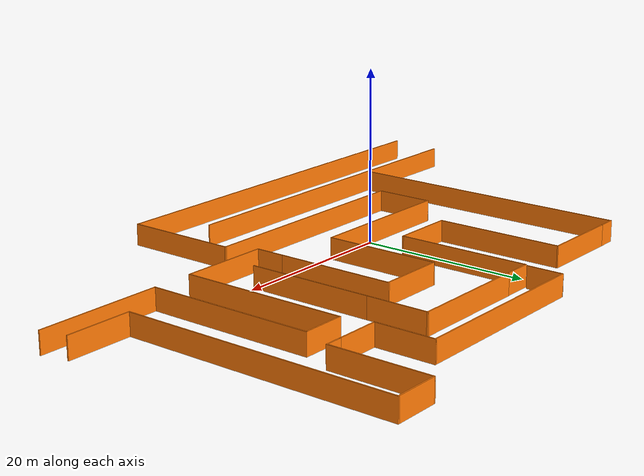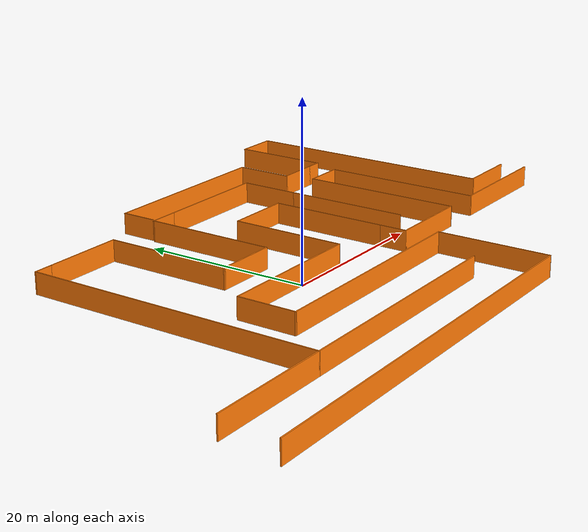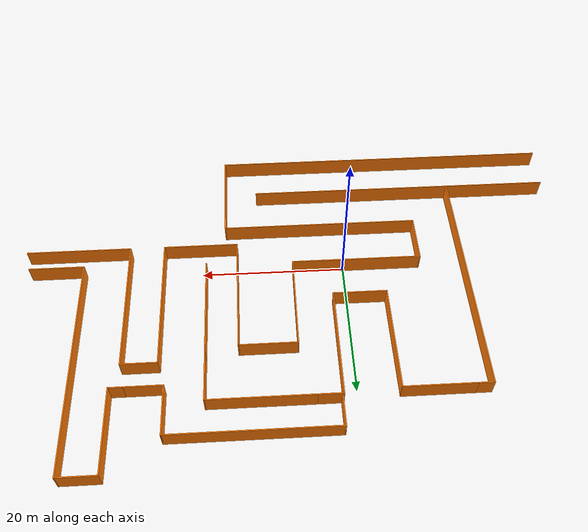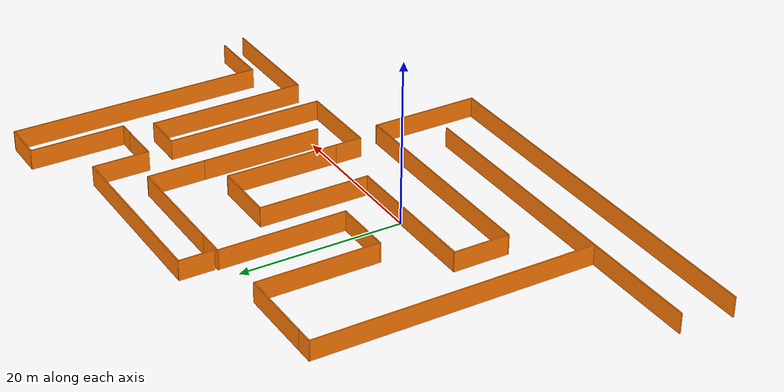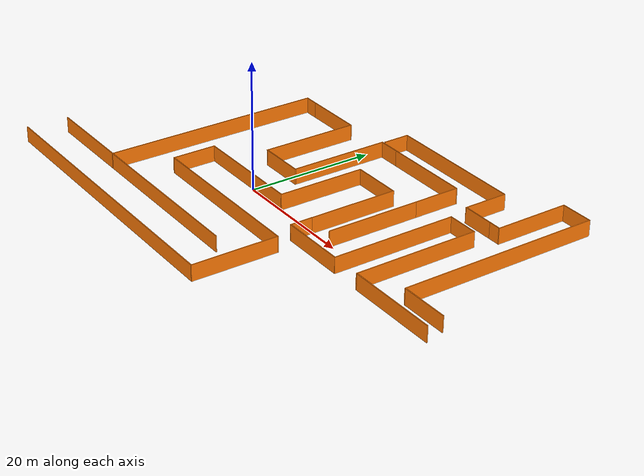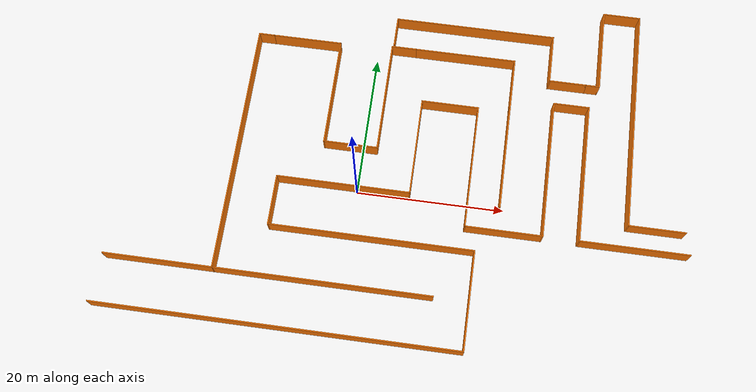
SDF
<?xml version='1.0'?>
<sdf version='1.6'>
  <model name='Maze'>
    <pose frame=''>6.29043 5.3484 0 0 -0 0</pose>
    <link name='Wall_100'>
      <collision name='Wall_100_Collision'>
        <geometry>
          <box>
            <size>7.25 0.15 2.5</size>
          </box>
        </geometry>
        <pose frame=''>0 0 1.25 0 -0 0</pose>
      </collision>
      <visual name='Wall_100_Visual'>
        <pose frame=''>0 0 1.25 0 -0 0</pose>
        <geometry>
          <box>
            <size>7.25 0.15 2.5</size>
          </box>
        </geometry>
        <material>
          <script>
            <uri>file://media/materials/scripts/gazebo.material</uri>
            <name>Gazebo/Grey</name>
          </script>
          <ambient>0.996078 0.47451 0.0196078 1</ambient>
        </material>
        <meta>
          <layer>0</layer>
        </meta>
      </visual>
      <pose frame=''>13.05 12.6653 0 0 -0 1.5708</pose>
    </link>
    <link name='Wall_101'>
      <collision name='Wall_101_Collision'>
        <geometry>
          <box>
            <size>14.25 0.15 2.5</size>
          </box>
        </geometry>
        <pose frame=''>0 0 1.25 0 -0 0</pose>
      </collision>
      <visual name='Wall_101_Visual'>
        <pose frame=''>0 0 1.25 0 -0 0</pose>
        <geometry>
          <box>
            <size>14.25 0.15 2.5</size>
          </box>
        </geometry>
        <material>
          <script>
            <uri>file://media/materials/scripts/gazebo.material</uri>
            <name>Gazebo/Grey</name>
          </script>
          <ambient>0.996078 0.47451 0.0196078 1</ambient>
        </material>
        <meta>
          <layer>0</layer>
        </meta>
      </visual>
      <pose frame=''>6 16.2153 0 0 -0 3.14159</pose>
    </link>
    <link name='Wall_102'>
      <collision name='Wall_102_Collision'>
        <geometry>
          <box>
            <size>3.5 0.15 2.5</size>
          </box>
        </geometry>
        <pose frame=''>0 0 1.25 0 -0 0</pose>
      </collision>
      <visual name='Wall_102_Visual'>
        <pose frame=''>0 0 1.25 0 -0 0</pose>
        <geometry>
          <box>
            <size>3.5 0.15 2.5</size>
          </box>
        </geometry>
        <material>
          <script>
            <uri>file://media/materials/scripts/gazebo.material</uri>
            <name>Gazebo/Grey</name>
          </script>
          <ambient>0.996078 0.47451 0.0196078 1</ambient>
        </material>
        <meta>
          <layer>0</layer>
        </meta>
      </visual>
      <pose frame=''>-2.725 16.2153 0 0 -0 3.14159</pose>
    </link>
    <link name='Wall_103'>
      <collision name='Wall_103_Collision'>
        <geometry>
          <box>
            <size>15.75 0.15 2.5</size>
          </box>
        </geometry>
        <pose frame=''>0 0 1.25 0 -0 0</pose>
      </collision>
      <visual name='Wall_103_Visual'>
        <pose frame=''>0 0 1.25 0 -0 0</pose>
        <geometry>
          <box>
            <size>15.75 0.15 2.5</size>
          </box>
        </geometry>
        <material>
          <script>
            <uri>file://media/materials/scripts/gazebo.material</uri>
            <name>Gazebo/Grey</name>
          </script>
          <ambient>0.996078 0.47451 0.0196078 1</ambient>
        </material>
        <meta>
          <layer>0</layer>
        </meta>
      </visual>
      <pose frame=''>-4.4 8.41528 0 0 -0 -1.5708</pose>
    </link>
    <link name='Wall_104'>
      <collision name='Wall_104_Collision'>
        <geometry>
          <box>
            <size>7.5 0.15 2.5</size>
          </box>
        </geometry>
        <pose frame=''>0 0 1.25 0 -0 0</pose>
      </collision>
      <visual name='Wall_104_Visual'>
        <pose frame=''>0 0 1.25 0 -0 0</pose>
        <geometry>
          <box>
            <size>7.5 0.15 2.5</size>
          </box>
        </geometry>
        <material>
          <script>
            <uri>file://media/materials/scripts/gazebo.material</uri>
            <name>Gazebo/Grey</name>
          </script>
          <ambient>0.996078 0.47451 0.0196078 1</ambient>
        </material>
        <meta>
          <layer>0</layer>
        </meta>
      </visual>
      <pose frame=''>-8.075 0.615279 0 0 -0 3.14159</pose>
    </link>
    <link name='Wall_105'>
      <collision name='Wall_105_Collision'>
        <geometry>
          <box>
            <size>15.25 0.15 2.5</size>
          </box>
        </geometry>
        <pose frame=''>0 0 1.25 0 -0 0</pose>
      </collision>
      <visual name='Wall_105_Visual'>
        <pose frame=''>0 0 1.25 0 -0 0</pose>
        <geometry>
          <box>
            <size>15.25 0.15 2.5</size>
          </box>
        </geometry>
        <material>
          <script>
            <uri>file://media/materials/scripts/gazebo.material</uri>
            <name>Gazebo/Grey</name>
          </script>
          <ambient>0.996078 0.47451 0.0196078 1</ambient>
        </material>
        <meta>
          <layer>0</layer>
        </meta>
      </visual>
      <pose frame=''>-11.75 8.16528 0 0 -0 1.5708</pose>
    </link>
    <link name='Wall_106'>
      <collision name='Wall_106_Collision'>
        <geometry>
          <box>
            <size>9.75 0.15 2.5</size>
          </box>
        </geometry>
        <pose frame=''>0 0 1.25 0 -0 0</pose>
      </collision>
      <visual name='Wall_106_Visual'>
        <pose frame=''>0 0 1.25 0 -0 0</pose>
        <geometry>
          <box>
            <size>9.75 0.15 2.5</size>
          </box>
        </geometry>
        <material>
          <script>
            <uri>file://media/materials/scripts/gazebo.material</uri>
            <name>Gazebo/Grey</name>
          </script>
          <ambient>0.996078 0.47451 0.0196078 1</ambient>
        </material>
        <meta>
          <layer>0</layer>
        </meta>
      </visual>
      <pose frame=''>-16.55 15.7153 0 0 -0 3.14159</pose>
    </link>
    <link name='Wall_107'>
      <collision name='Wall_107_Collision'>
        <geometry>
          <box>
            <size>2.25 0.15 2.5</size>
          </box>
        </geometry>
        <pose frame=''>0 0 1.25 0 -0 0</pose>
      </collision>
      <visual name='Wall_107_Visual'>
        <pose frame=''>0 0 1.25 0 -0 0</pose>
        <geometry>
          <box>
            <size>2.25 0.15 2.5</size>
          </box>
        </geometry>
        <material>
          <script>
            <uri>file://media/materials/scripts/gazebo.material</uri>
            <name>Gazebo/Grey</name>
          </script>
          <ambient>0.996078 0.47451 0.0196078 1</ambient>
        </material>
        <meta>
          <layer>0</layer>
        </meta>
      </visual>
      <pose frame=''>-22.4 15.7153 0 0 -0 3.14159</pose>
    </link>
    <link name='Wall_108'>
      <collision name='Wall_108_Collision'>
        <geometry>
          <box>
            <size>34.75 0.15 2.5</size>
          </box>
        </geometry>
        <pose frame=''>0 0 1.25 0 -0 0</pose>
      </collision>
      <visual name='Wall_108_Visual'>
        <pose frame=''>0 0 1.25 0 -0 0</pose>
        <geometry>
          <box>
            <size>34.75 0.15 2.5</size>
          </box>
        </geometry>
        <material>
          <script>
            <uri>file://media/materials/scripts/gazebo.material</uri>
            <name>Gazebo/Grey</name>
          </script>
          <ambient>0.996078 0.47451 0.0196078 1</ambient>
        </material>
        <meta>
          <layer>0</layer>
        </meta>
      </visual>
      <pose frame=''>-23.45 -1.58472 0 0 -0 -1.5708</pose>
    </link>
    <link name='Wall_109'>
      <collision name='Wall_109_Collision'>
        <geometry>
          <box>
            <size>29.25 0.15 2.5</size>
          </box>
        </geometry>
        <pose frame=''>0 0 1.25 0 -0 0</pose>
      </collision>
      <visual name='Wall_109_Visual'>
        <pose frame=''>0 0 1.25 0 -0 0</pose>
        <geometry>
          <box>
            <size>29.25 0.15 2.5</size>
          </box>
        </geometry>
        <material>
          <script>
            <uri>file://media/materials/scripts/gazebo.material</uri>
            <name>Gazebo/Grey</name>
          </script>
          <ambient>0.996078 0.47451 0.0196078 1</ambient>
        </material>
        <meta>
          <layer>0</layer>
        </meta>
      </visual>
      <pose frame=''>-8.9 -18.8847 0 0 -0 0</pose>
    </link>
    <link name='Wall_113'>
      <collision name='Wall_113_Collision'>
        <geometry>
          <box>
            <size>3.5 0.15 2.5</size>
          </box>
        </geometry>
        <pose frame=''>0 0 1.25 0 -0 0</pose>
      </collision>
      <visual name='Wall_113_Visual'>
        <pose frame=''>0 0 1.25 0 -0 0</pose>
        <geometry>
          <box>
            <size>3.5 0.15 2.5</size>
          </box>
        </geometry>
        <material>
          <script>
            <uri>file://media/materials/scripts/gazebo.material</uri>
            <name>Gazebo/Grey</name>
          </script>
          <ambient>0.996078 0.47451 0.0196078 1</ambient>
        </material>
        <meta>
          <layer>0</layer>
        </meta>
      </visual>
      <pose frame=''>8.7 -7.22502 0 0 -0 -1.5708</pose>
    </link>
    <link name='Wall_114'>
      <collision name='Wall_114_Collision'>
        <geometry>
          <box>
            <size>10.5 0.15 2.5</size>
          </box>
        </geometry>
        <pose frame=''>0 0 1.25 0 -0 0</pose>
      </collision>
      <visual name='Wall_114_Visual'>
        <pose frame=''>0 0 1.25 0 -0 0</pose>
        <geometry>
          <box>
            <size>10.5 0.15 2.5</size>
          </box>
        </geometry>
        <material>
          <script>
            <uri>file://media/materials/scripts/gazebo.material</uri>
            <name>Gazebo/Grey</name>
          </script>
          <ambient>0.996078 0.47451 0.0196078 1</ambient>
        </material>
        <meta>
          <layer>0</layer>
        </meta>
      </visual>
      <pose frame=''>13.875 -8.90002 0 0 -0 0</pose>
    </link>
    <link name='Wall_115'>
      <collision name='Wall_115_Collision'>
        <geometry>
          <box>
            <size>19.5 0.15 2.5</size>
          </box>
        </geometry>
        <pose frame=''>0 0 1.25 0 -0 0</pose>
      </collision>
      <visual name='Wall_115_Visual'>
        <pose frame=''>0 0 1.25 0 -0 0</pose>
        <geometry>
          <box>
            <size>19.5 0.15 2.5</size>
          </box>
        </geometry>
        <material>
          <script>
            <uri>file://media/materials/scripts/gazebo.material</uri>
            <name>Gazebo/Grey</name>
          </script>
          <ambient>0.996078 0.47451 0.0196078 1</ambient>
        </material>
        <meta>
          <layer>0</layer>
        </meta>
      </visual>
      <pose frame=''>19.05 0.774975 0 0 -0 1.5708</pose>
    </link>
    <link name='Wall_116'>
      <collision name='Wall_116_Collision'>
        <geometry>
          <box>
            <size>5 0.15 2.5</size>
          </box>
        </geometry>
        <pose frame=''>0 0 1.25 0 -0 0</pose>
      </collision>
      <visual name='Wall_116_Visual'>
        <pose frame=''>0 0 1.25 0 -0 0</pose>
        <geometry>
          <box>
            <size>5 0.15 2.5</size>
          </box>
        </geometry>
        <material>
          <script>
            <uri>file://media/materials/scripts/gazebo.material</uri>
            <name>Gazebo/Grey</name>
          </script>
          <ambient>0.996078 0.47451 0.0196078 1</ambient>
        </material>
        <meta>
          <layer>0</layer>
        </meta>
      </visual>
      <pose frame=''>21.475 10.45 0 0 -0 0</pose>
    </link>
    <link name='Wall_117'>
      <collision name='Wall_117_Collision'>
        <geometry>
          <box>
            <size>19.5 0.15 2.5</size>
          </box>
        </geometry>
        <pose frame=''>0 0 1.25 0 -0 0</pose>
      </collision>
      <visual name='Wall_117_Visual'>
        <pose frame=''>0 0 1.25 0 -0 0</pose>
        <geometry>
          <box>
            <size>19.5 0.15 2.5</size>
          </box>
        </geometry>
        <material>
          <script>
            <uri>file://media/materials/scripts/gazebo.material</uri>
            <name>Gazebo/Grey</name>
          </script>
          <ambient>0.996078 0.47451 0.0196078 1</ambient>
        </material>
        <meta>
          <layer>0</layer>
        </meta>
      </visual>
      <pose frame=''>23.9 0.774975 0 0 -0 -1.5708</pose>
    </link>
    <link name='Wall_118'>
      <collision name='Wall_118_Collision'>
        <geometry>
          <box>
            <size>14.75 0.15 2.5</size>
          </box>
        </geometry>
        <pose frame=''>0 0 1.25 0 -0 0</pose>
      </collision>
      <visual name='Wall_118_Visual'>
        <pose frame=''>0 0 1.25 0 -0 0</pose>
        <geometry>
          <box>
            <size>14.75 0.15 2.5</size>
          </box>
        </geometry>
        <material>
          <script>
            <uri>file://media/materials/scripts/gazebo.material</uri>
            <name>Gazebo/Grey</name>
          </script>
          <ambient>0.996078 0.47451 0.0196078 1</ambient>
        </material>
        <meta>
          <layer>0</layer>
        </meta>
      </visual>
      <pose frame=''>31.2 -8.90002 0 0 -0 0</pose>
    </link>
    <link name='Wall_120'>
      <collision name='Wall_120_Collision'>
        <geometry>
          <box>
            <size>4.25 0.15 2.5</size>
          </box>
        </geometry>
        <pose frame=''>0 0 1.25 0 -0 0</pose>
      </collision>
      <visual name='Wall_120_Visual'>
        <pose frame=''>0 0 1.25 0 -0 0</pose>
        <geometry>
          <box>
            <size>4.25 0.15 2.5</size>
          </box>
        </geometry>
        <material>
          <script>
            <uri>file://media/materials/scripts/gazebo.material</uri>
            <name>Gazebo/Grey</name>
          </script>
          <ambient>0.996078 0.47451 0.0196078 1</ambient>
        </material>
        <meta>
          <layer>0</layer>
        </meta>
      </visual>
      <pose frame=''>-4.19132 18.6347 0 0 -0 1.5708</pose>
    </link>
    <link name='Wall_121'>
      <collision name='Wall_121_Collision'>
        <geometry>
          <box>
            <size>22.5 0.15 2.5</size>
          </box>
        </geometry>
        <pose frame=''>0 0 1.25 0 -0 0</pose>
      </collision>
      <visual name='Wall_121_Visual'>
        <pose frame=''>0 0 1.25 0 -0 0</pose>
        <geometry>
          <box>
            <size>22.5 0.15 2.5</size>
          </box>
        </geometry>
        <material>
          <script>
            <uri>file://media/materials/scripts/gazebo.material</uri>
            <name>Gazebo/Grey</name>
          </script>
          <ambient>0.996078 0.47451 0.0196078 1</ambient>
        </material>
        <meta>
          <layer>0</layer>
        </meta>
      </visual>
      <pose frame=''>6.98368 20.6847 0 0 -0 0</pose>
    </link>
    <link name='Wall_122'>
      <collision name='Wall_122_Collision'>
        <geometry>
          <box>
            <size>7 0.15 2.5</size>
          </box>
        </geometry>
        <pose frame=''>0 0 1.25 0 -0 0</pose>
      </collision>
      <visual name='Wall_122_Visual'>
        <pose frame=''>0 0 1.25 0 -0 0</pose>
        <geometry>
          <box>
            <size>7 0.15 2.5</size>
          </box>
        </geometry>
        <material>
          <script>
            <uri>file://media/materials/scripts/gazebo.material</uri>
            <name>Gazebo/Grey</name>
          </script>
          <ambient>0.996078 0.47451 0.0196078 1</ambient>
        </material>
        <meta>
          <layer>0</layer>
        </meta>
      </visual>
      <pose frame=''>18.1587 17.2597 0 0 -0 -1.5708</pose>
    </link>
    <link name='Wall_123'>
      <collision name='Wall_123_Collision'>
        <geometry>
          <box>
            <size>5.25 0.15 2.5</size>
          </box>
        </geometry>
        <pose frame=''>0 0 1.25 0 -0 0</pose>
      </collision>
      <visual name='Wall_123_Visual'>
        <pose frame=''>0 0 1.25 0 -0 0</pose>
        <geometry>
          <box>
            <size>5.25 0.15 2.5</size>
          </box>
        </geometry>
        <material>
          <script>
            <uri>file://media/materials/scripts/gazebo.material</uri>
            <name>Gazebo/Grey</name>
          </script>
          <ambient>0.996078 0.47451 0.0196078 1</ambient>
        </material>
        <meta>
          <layer>0</layer>
        </meta>
      </visual>
      <pose frame=''>20.7087 13.8347 0 0 -0 0</pose>
    </link>
    <link name='Wall_124'>
      <collision name='Wall_124_Collision'>
        <geometry>
          <box>
            <size>2 0.15 2.5</size>
          </box>
        </geometry>
        <pose frame=''>0 0 1.25 0 -0 0</pose>
      </collision>
      <visual name='Wall_124_Visual'>
        <pose frame=''>0 0 1.25 0 -0 0</pose>
        <geometry>
          <box>
            <size>2 0.15 2.5</size>
          </box>
        </geometry>
        <material>
          <script>
            <uri>file://media/materials/scripts/gazebo.material</uri>
            <name>Gazebo/Grey</name>
          </script>
          <ambient>0.996078 0.47451 0.0196078 1</ambient>
        </material>
        <meta>
          <layer>0</layer>
        </meta>
      </visual>
      <pose frame=''>24.1837 13.8347 0 0 -0 0</pose>
    </link>
    <link name='Wall_125'>
      <collision name='Wall_125_Collision'>
        <geometry>
          <box>
            <size>11.75 0.15 2.5</size>
          </box>
        </geometry>
        <pose frame=''>0 0 1.25 0 -0 0</pose>
      </collision>
      <visual name='Wall_125_Visual'>
        <pose frame=''>0 0 1.25 0 -0 0</pose>
        <geometry>
          <box>
            <size>11.75 0.15 2.5</size>
          </box>
        </geometry>
        <material>
          <script>
            <uri>file://media/materials/scripts/gazebo.material</uri>
            <name>Gazebo/Grey</name>
          </script>
          <ambient>0.996078 0.47451 0.0196078 1</ambient>
        </material>
        <meta>
          <layer>0</layer>
        </meta>
      </visual>
      <pose frame=''>25.1087 19.6347 0 0 -0 1.5708</pose>
    </link>
    <link name='Wall_126'>
      <collision name='Wall_126_Collision'>
        <geometry>
          <box>
            <size>5.25 0.15 2.5</size>
          </box>
        </geometry>
        <pose frame=''>0 0 1.25 0 -0 0</pose>
      </collision>
      <visual name='Wall_126_Visual'>
        <pose frame=''>0 0 1.25 0 -0 0</pose>
        <geometry>
          <box>
            <size>5.25 0.15 2.5</size>
          </box>
        </geometry>
        <material>
          <script>
            <uri>file://media/materials/scripts/gazebo.material</uri>
            <name>Gazebo/Grey</name>
          </script>
          <ambient>0.996078 0.47451 0.0196078 1</ambient>
        </material>
        <meta>
          <layer>0</layer>
        </meta>
      </visual>
      <pose frame=''>27.6587 25.4347 0 0 -0 0</pose>
    </link>
    <link name='Wall_127'>
      <collision name='Wall_127_Collision'>
        <geometry>
          <box>
            <size>31.5 0.15 2.5</size>
          </box>
        </geometry>
        <pose frame=''>0 0 1.25 0 -0 0</pose>
      </collision>
      <visual name='Wall_127_Visual'>
        <pose frame=''>0 0 1.25 0 -0 0</pose>
        <geometry>
          <box>
            <size>31.5 0.15 2.5</size>
          </box>
        </geometry>
        <material>
          <script>
            <uri>file://media/materials/scripts/gazebo.material</uri>
            <name>Gazebo/Grey</name>
          </script>
          <ambient>0.996078 0.47451 0.0196078 1</ambient>
        </material>
        <meta>
          <layer>0</layer>
        </meta>
      </visual>
      <pose frame=''>30.2087 9.75972 0 0 -0 -1.5708</pose>
    </link>
    <link name='Wall_128'>
      <collision name='Wall_128_Collision'>
        <geometry>
          <box>
            <size>7.75 0.15 2.5</size>
          </box>
        </geometry>
        <pose frame=''>0 0 1.25 0 -0 0</pose>
      </collision>
      <visual name='Wall_128_Visual'>
        <pose frame=''>0 0 1.25 0 -0 0</pose>
        <geometry>
          <box>
            <size>7.75 0.15 2.5</size>
          </box>
        </geometry>
        <material>
          <script>
            <uri>file://media/materials/scripts/gazebo.material</uri>
            <name>Gazebo/Grey</name>
          </script>
          <ambient>0.996078 0.47451 0.0196078 1</ambient>
        </material>
        <meta>
          <layer>0</layer>
        </meta>
      </visual>
      <pose frame=''>34.0087 -5.91528 0 0 -0 0</pose>
    </link>
    <link name='Wall_133'>
      <collision name='Wall_133_Collision'>
        <geometry>
          <box>
            <size>14.75 0.15 2.5</size>
          </box>
        </geometry>
        <pose frame=''>0 0 1.25 0 -0 0</pose>
      </collision>
      <visual name='Wall_133_Visual'>
        <pose frame=''>0 0 1.25 0 -0 0</pose>
        <geometry>
          <box>
            <size>14.75 0.15 2.5</size>
          </box>
        </geometry>
        <material>
          <script>
            <uri>file://media/materials/scripts/gazebo.material</uri>
            <name>Gazebo/Grey</name>
          </script>
          <ambient>0.996078 0.47451 0.0196078 1</ambient>
        </material>
        <meta>
          <layer>0</layer>
        </meta>
      </visual>
      <pose frame=''>-30.75 -18.8847 0 0 -0 3.14159</pose>
    </link>
    <link name='Wall_90'>
      <collision name='Wall_90_Collision'>
        <geometry>
          <box>
            <size>49 0.15 2.5</size>
          </box>
        </geometry>
        <pose frame=''>0 0 1.25 0 -0 0</pose>
      </collision>
      <visual name='Wall_90_Visual'>
        <pose frame=''>0 0 1.25 0 -0 0</pose>
        <geometry>
          <box>
            <size>49 0.15 2.5</size>
          </box>
        </geometry>
        <material>
          <script>
            <uri>file://media/materials/scripts/gazebo.material</uri>
            <name>Gazebo/Grey</name>
          </script>
          <ambient>0.996078 0.47451 0.0196078 1</ambient>
        </material>
        <meta>
          <layer>0</layer>
        </meta>
      </visual>
      <pose frame=''>-14.075 -25.4347 0 0 -0 0</pose>
    </link>
    <link name='Wall_91'>
      <collision name='Wall_91_Collision'>
        <geometry>
          <box>
            <size>13.5 0.15 2.5</size>
          </box>
        </geometry>
        <pose frame=''>0 0 1.25 0 -0 0</pose>
      </collision>
      <visual name='Wall_91_Visual'>
        <pose frame=''>0 0 1.25 0 -0 0</pose>
        <geometry>
          <box>
            <size>13.5 0.15 2.5</size>
          </box>
        </geometry>
        <material>
          <script>
            <uri>file://media/materials/scripts/gazebo.material</uri>
            <name>Gazebo/Grey</name>
          </script>
          <ambient>0.996078 0.47451 0.0196078 1</ambient>
        </material>
        <meta>
          <layer>0</layer>
        </meta>
      </visual>
      <pose frame=''>10.35 -18.7597 0 0 -0 1.5708</pose>
    </link>
    <link name='Wall_92'>
      <collision name='Wall_92_Collision'>
        <geometry>
          <box>
            <size>27.75 0.15 2.5</size>
          </box>
        </geometry>
        <pose frame=''>0 0 1.25 0 -0 0</pose>
      </collision>
      <visual name='Wall_92_Visual'>
        <pose frame=''>0 0 1.25 0 -0 0</pose>
        <geometry>
          <box>
            <size>27.75 0.15 2.5</size>
          </box>
        </geometry>
        <material>
          <script>
            <uri>file://media/materials/scripts/gazebo.material</uri>
            <name>Gazebo/Grey</name>
          </script>
          <ambient>0.996078 0.47451 0.0196078 1</ambient>
        </material>
        <meta>
          <layer>0</layer>
        </meta>
      </visual>
      <pose frame=''>-3.45 -12.0847 0 0 -0 3.14159</pose>
    </link>
    <link name='Wall_93'>
      <collision name='Wall_93_Collision'>
        <geometry>
          <box>
            <size>7 0.15 2.5</size>
          </box>
        </geometry>
        <pose frame=''>0 0 1.25 0 -0 0</pose>
      </collision>
      <visual name='Wall_93_Visual'>
        <pose frame=''>0 0 1.25 0 -0 0</pose>
        <geometry>
          <box>
            <size>7 0.15 2.5</size>
          </box>
        </geometry>
        <material>
          <script>
            <uri>file://media/materials/scripts/gazebo.material</uri>
            <name>Gazebo/Grey</name>
          </script>
          <ambient>0.996078 0.47451 0.0196078 1</ambient>
        </material>
        <meta>
          <layer>0</layer>
        </meta>
      </visual>
      <pose frame=''>-17.25 -8.65972 0 0 -0 1.5708</pose>
    </link>
    <link name='Wall_94'>
      <collision name='Wall_94_Collision'>
        <geometry>
          <box>
            <size>18.25 0.15 2.5</size>
          </box>
        </geometry>
        <pose frame=''>0 0 1.25 0 -0 0</pose>
      </collision>
      <visual name='Wall_94_Visual'>
        <pose frame=''>0 0 1.25 0 -0 0</pose>
        <geometry>
          <box>
            <size>18.25 0.15 2.5</size>
          </box>
        </geometry>
        <material>
          <script>
            <uri>file://media/materials/scripts/gazebo.material</uri>
            <name>Gazebo/Grey</name>
          </script>
          <ambient>0.996078 0.47451 0.0196078 1</ambient>
        </material>
        <meta>
          <layer>0</layer>
        </meta>
      </visual>
      <pose frame=''>-8.2 -5.23472 0 0 -0 0</pose>
    </link>
    <link name='Wall_95'>
      <collision name='Wall_95_Collision'>
        <geometry>
          <box>
            <size>13.75 0.15 2.5</size>
          </box>
        </geometry>
        <pose frame=''>0 0 1.25 0 -0 0</pose>
      </collision>
      <visual name='Wall_95_Visual'>
        <pose frame=''>0 0 1.25 0 -0 0</pose>
        <geometry>
          <box>
            <size>13.75 0.15 2.5</size>
          </box>
        </geometry>
        <material>
          <script>
            <uri>file://media/materials/scripts/gazebo.material</uri>
            <name>Gazebo/Grey</name>
          </script>
          <ambient>0.996078 0.47451 0.0196078 1</ambient>
        </material>
        <meta>
          <layer>0</layer>
        </meta>
      </visual>
      <pose frame=''>0.85 1.56528 0 0 -0 1.5708</pose>
    </link>
    <link name='Wall_96'>
      <collision name='Wall_96_Collision'>
        <geometry>
          <box>
            <size>8 0.15 2.5</size>
          </box>
        </geometry>
        <pose frame=''>0 0 1.25 0 -0 0</pose>
      </collision>
      <visual name='Wall_96_Visual'>
        <pose frame=''>0 0 1.25 0 -0 0</pose>
        <geometry>
          <box>
            <size>8 0.15 2.5</size>
          </box>
        </geometry>
        <material>
          <script>
            <uri>file://media/materials/scripts/gazebo.material</uri>
            <name>Gazebo/Grey</name>
          </script>
          <ambient>0.996078 0.47451 0.0196078 1</ambient>
        </material>
        <meta>
          <layer>0</layer>
        </meta>
      </visual>
      <pose frame=''>4.775 8.36528 0 0 -0 0</pose>
    </link>
    <link name='Wall_97'>
      <collision name='Wall_97_Collision'>
        <geometry>
          <box>
            <size>14.0654 0.15 2.5</size>
          </box>
        </geometry>
        <pose frame=''>0 0 1.25 0 -0 0</pose>
      </collision>
      <visual name='Wall_97_Visual'>
        <pose frame=''>0 0 1.25 0 -0 0</pose>
        <geometry>
          <box>
            <size>14.0654 0.15 2.5</size>
          </box>
        </geometry>
        <material>
          <script>
            <uri>file://media/materials/scripts/gazebo.material</uri>
            <name>Gazebo/Grey</name>
          </script>
          <ambient>0.996078 0.47451 0.0196078 1</ambient>
        </material>
        <meta>
          <layer>0</layer>
        </meta>
      </visual>
      <pose frame=''>8.7 1.40763 0 0 -0 -1.5708</pose>
    </link>
    <link name='Wall_99'>
      <collision name='Wall_99_Collision'>
        <geometry>
          <box>
            <size>14.8154 0.15 2.5</size>
          </box>
        </geometry>
        <pose frame=''>0 0 1.25 0 -0 0</pose>
      </collision>
      <visual name='Wall_99_Visual'>
        <pose frame=''>0 0 1.25 0 -0 0</pose>
        <geometry>
          <box>
            <size>14.8154 0.15 2.5</size>
          </box>
        </geometry>
        <material>
          <script>
            <uri>file://media/materials/scripts/gazebo.material</uri>
            <name>Gazebo/Grey</name>
          </script>
          <ambient>0.996078 0.47451 0.0196078 1</ambient>
        </material>
        <meta>
          <layer>0</layer>
        </meta>
      </visual>
      <pose frame=''>13.05 1.78263 0 0 -0 1.5708</pose>
    </link>
    <static>1</static>
  </model>
</sdf>
